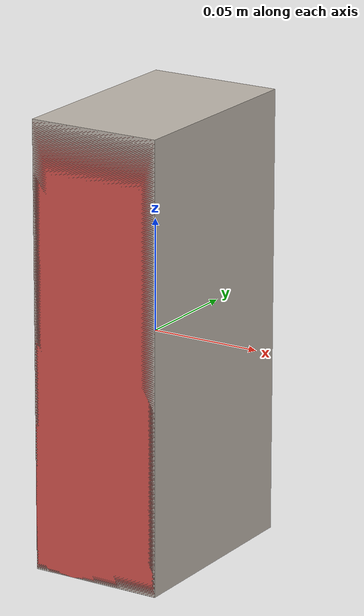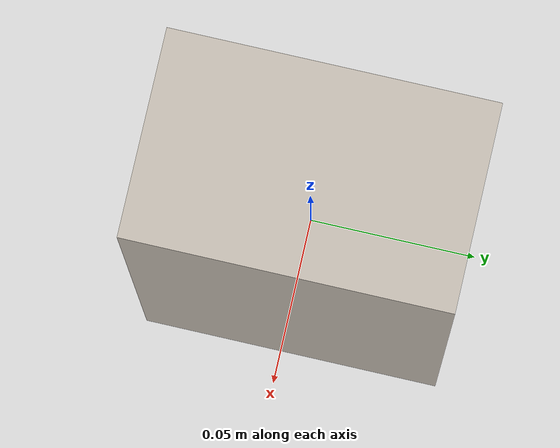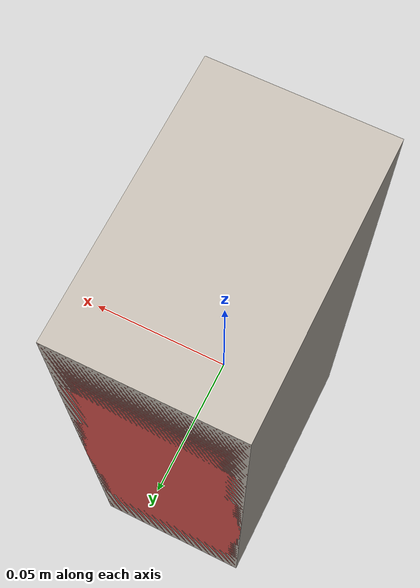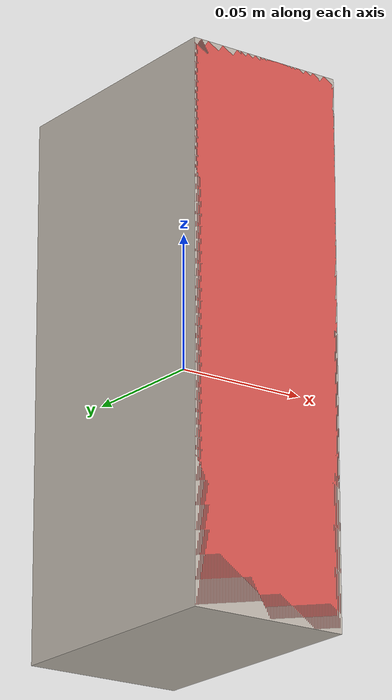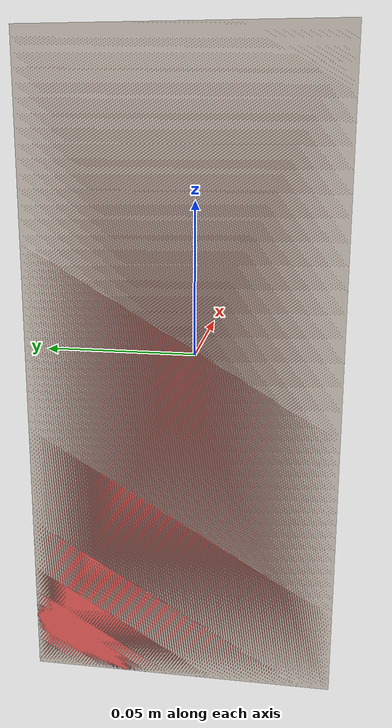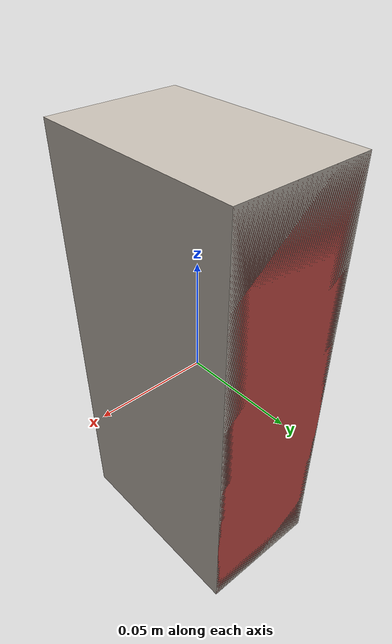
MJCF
<?xml version="1.0" ?>
<mujoco model="milk_box">
	<compiler meshdir="../meshes/" texturedir="../meshes/textures" angle="radian" autolimits="true" balanceinertia="true" boundmass="0.000001" boundinertia="0.000001"/>
	<default>
		<default class="visual">
			<geom contype="0" conaffinity="0"/>
		</default>
		<default class="collision">
			<geom rgba="1.0 0.0 0.0 0.5"/>
		</default>
	</default>
	<asset>
		<texture name="SM_MilkBox_visual1d01d01d0" type="2d" file="milk_box.png"/>
		<material name="SM_MilkBox_visual1d01d01d0" texture="SM_MilkBox_visual1d01d01d0"/>
		<mesh name="SM_MilkBox_visual1d01d01d0" file="obj/milk_box.obj"/>
	</asset>
	<worldbody>
		<body name="milk_box" pos="0.0 0.0 0.0" quat="1.0 0.0 0.0 0.0">
			<geom name="milk_box_visual_0" pos="0.0 0.0 0.0" quat="1.0 0.0 0.0 0.0" class="visual" type="mesh" material="SM_MilkBox_visual1d01d01d0" mesh="SM_MilkBox_visual1d01d01d0"/>
			<geom name="milk_box_collision_0" pos="0.0 0.0 0.0" quat="0.5425633603552676 0.0 0.0 0.0" class="collision" type="box" size="0.03 0.0475 0.1"/>
		</body>
	</worldbody>
</mujoco>
